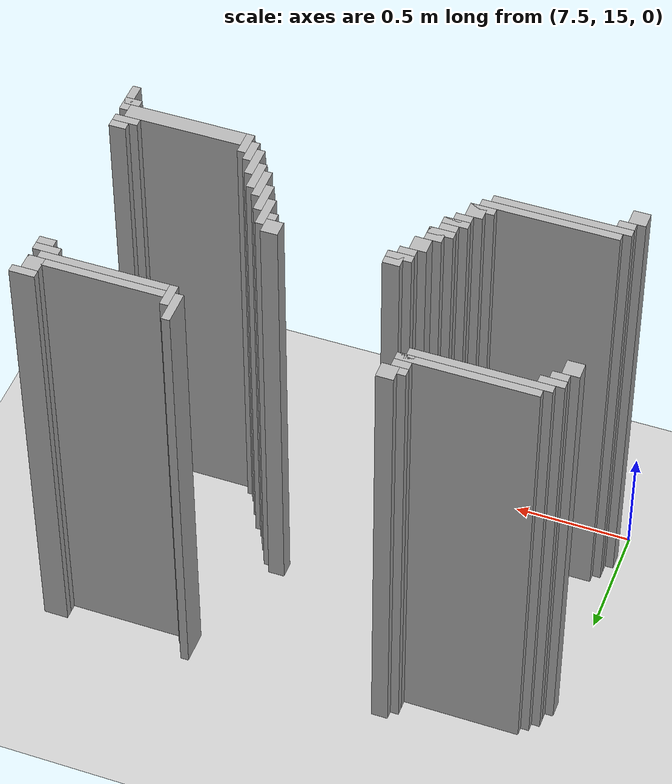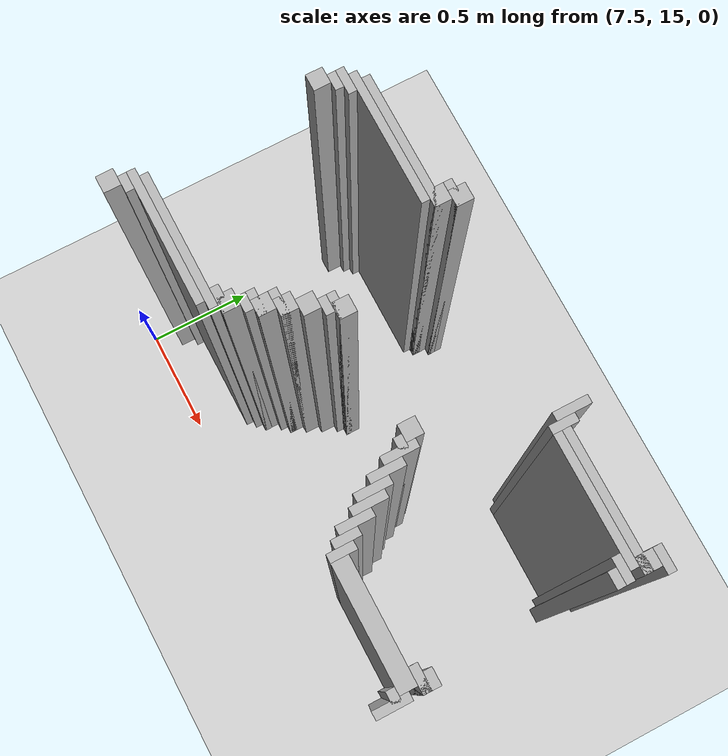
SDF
<sdf version="1.6">
 <world name="slam_world">
  <model name="ground_plane">
   <static>true</static>
   <link name="link">
    <collision name="collision">
     <geometry><plane><normal>0 0 1</normal><size>100 100</size></plane></geometry>
    </collision>
    <visual name="visual">
     <geometry><plane><normal>0 0 1</normal><size>100 100</size></plane></geometry>
     <material>
      <ambient>0.8 0.8 0.8 1</ambient>
      <diffuse>0.8 0.8 0.8 1</diffuse>
      <specular>0.8 0.8 0.8 1</specular>
     </material>
    </visual>
   </link>
  </model>
  <model name="wall_374">
   <static>true</static>
   <pose>8.178654292343387 16.218097447795824 1.0 0 0 0</pose>
   <link name="link">
    <collision name="collision">
     <geometry><box><size>0.06960556844547564 0.06960556844547564 2.0</size></box></geometry>
    </collision>
    <visual name="visual">
     <geometry><box><size>0.06960556844547564 0.06960556844547564 2.0</size></box></geometry>
     <material><ambient>0.5 0.5 0.5 1</ambient><diffuse>0.7 0.7 0.7 1</diffuse></material>
    </visual>
   </link>
  </model>
  <model name="wall_375">
   <static>true</static>
   <pose>9.031322505800464 16.183294663573086 1.0 0 0 0</pose>
   <link name="link">
    <collision name="collision">
     <geometry><box><size>0.03480278422273782 0.13921113689095127 2.0</size></box></geometry>
    </collision>
    <visual name="visual">
     <geometry><box><size>0.03480278422273782 0.13921113689095127 2.0</size></box></geometry>
     <material><ambient>0.5 0.5 0.5 1</ambient><diffuse>0.7 0.7 0.7 1</diffuse></material>
    </visual>
   </link>
  </model>
  <model name="wall_385">
   <static>true</static>
   <pose>8.161252900232018 16.200696055684453 1.0 0 0 0</pose>
   <link name="link">
    <collision name="collision">
     <geometry><box><size>0.10440835266821345 0.03480278422273782 2.0</size></box></geometry>
    </collision>
    <visual name="visual">
     <geometry><box><size>0.10440835266821345 0.03480278422273782 2.0</size></box></geometry>
     <material><ambient>0.5 0.5 0.5 1</ambient><diffuse>0.7 0.7 0.7 1</diffuse></material>
    </visual>
   </link>
  </model>
  <model name="wall_386">
   <static>true</static>
   <pose>9.622969837587007 16.200696055684453 1.0 0 0 0</pose>
   <link name="link">
    <collision name="collision">
     <geometry><box><size>0.10440835266821345 0.03480278422273782 2.0</size></box></geometry>
    </collision>
    <visual name="visual">
     <geometry><box><size>0.10440835266821345 0.03480278422273782 2.0</size></box></geometry>
     <material><ambient>0.5 0.5 0.5 1</ambient><diffuse>0.7 0.7 0.7 1</diffuse></material>
    </visual>
   </link>
  </model>
  <model name="wall_396">
   <static>true</static>
   <pose>8.14385150812065 16.14849187935035 1.0 0 0 0</pose>
   <link name="link">
    <collision name="collision">
     <geometry><box><size>0.06960556844547564 0.06960556844547564 2.0</size></box></geometry>
    </collision>
    <visual name="visual">
     <geometry><box><size>0.06960556844547564 0.06960556844547564 2.0</size></box></geometry>
     <material><ambient>0.5 0.5 0.5 1</ambient><diffuse>0.7 0.7 0.7 1</diffuse></material>
    </visual>
   </link>
  </model>
  <model name="wall_397">
   <static>true</static>
   <pose>9.066125290023201 16.13109048723898 1.0 0 0 0</pose>
   <link name="link">
    <collision name="collision">
     <geometry><box><size>0.03480278422273782 0.10440835266821345 2.0</size></box></geometry>
    </collision>
    <visual name="visual">
     <geometry><box><size>0.03480278422273782 0.10440835266821345 2.0</size></box></geometry>
     <material><ambient>0.5 0.5 0.5 1</ambient><diffuse>0.7 0.7 0.7 1</diffuse></material>
    </visual>
   </link>
  </model>
  <model name="wall_398">
   <static>true</static>
   <pose>9.605568445475638 16.14849187935035 1.0 0 0 0</pose>
   <link name="link">
    <collision name="collision">
     <geometry><box><size>0.06960556844547564 0.06960556844547564 2.0</size></box></geometry>
    </collision>
    <visual name="visual">
     <geometry><box><size>0.06960556844547564 0.06960556844547564 2.0</size></box></geometry>
     <material><ambient>0.5 0.5 0.5 1</ambient><diffuse>0.7 0.7 0.7 1</diffuse></material>
    </visual>
   </link>
  </model>
  <model name="wall_410">
   <static>true</static>
   <pose>7.900232018561485 16.13109048723898 1.0 0 0 0</pose>
   <link name="link">
    <collision name="collision">
     <geometry><box><size>0.5568445475638051 0.03480278422273782 2.0</size></box></geometry>
    </collision>
    <visual name="visual">
     <geometry><box><size>0.5568445475638051 0.03480278422273782 2.0</size></box></geometry>
     <material><ambient>0.5 0.5 0.5 1</ambient><diffuse>0.7 0.7 0.7 1</diffuse></material>
    </visual>
   </link>
  </model>
  <model name="wall_411">
   <static>true</static>
   <pose>9.361948955916473 16.13109048723898 1.0 0 0 0</pose>
   <link name="link">
    <collision name="collision">
     <geometry><box><size>0.5568445475638051 0.03480278422273782 2.0</size></box></geometry>
    </collision>
    <visual name="visual">
     <geometry><box><size>0.5568445475638051 0.03480278422273782 2.0</size></box></geometry>
     <material><ambient>0.5 0.5 0.5 1</ambient><diffuse>0.7 0.7 0.7 1</diffuse></material>
    </visual>
   </link>
  </model>
  <model name="wall_422">
   <static>true</static>
   <pose>7.865429234338746 16.09628770301624 1.0 0 0 0</pose>
   <link name="link">
    <collision name="collision">
     <geometry><box><size>0.5568445475638051 0.03480278422273782 2.0</size></box></geometry>
    </collision>
    <visual name="visual">
     <geometry><box><size>0.5568445475638051 0.03480278422273782 2.0</size></box></geometry>
     <material><ambient>0.5 0.5 0.5 1</ambient><diffuse>0.7 0.7 0.7 1</diffuse></material>
    </visual>
   </link>
  </model>
  <model name="wall_423">
   <static>true</static>
   <pose>9.344547563805104 16.09628770301624 1.0 0 0 0</pose>
   <link name="link">
    <collision name="collision">
     <geometry><box><size>0.5220417633410672 0.03480278422273782 2.0</size></box></geometry>
    </collision>
    <visual name="visual">
     <geometry><box><size>0.5220417633410672 0.03480278422273782 2.0</size></box></geometry>
     <material><ambient>0.5 0.5 0.5 1</ambient><diffuse>0.7 0.7 0.7 1</diffuse></material>
    </visual>
   </link>
  </model>
  <model name="wall_435">
   <static>true</static>
   <pose>7.604408352668213 16.061484918793504 1.0 0 0 0</pose>
   <link name="link">
    <collision name="collision">
     <geometry><box><size>0.10440835266821345 0.03480278422273782 2.0</size></box></geometry>
    </collision>
    <visual name="visual">
     <geometry><box><size>0.10440835266821345 0.03480278422273782 2.0</size></box></geometry>
     <material><ambient>0.5 0.5 0.5 1</ambient><diffuse>0.7 0.7 0.7 1</diffuse></material>
    </visual>
   </link>
  </model>
  <model name="wall_436">
   <static>true</static>
   <pose>9.588167053364268 16.061484918793504 1.0 0 0 0</pose>
   <link name="link">
    <collision name="collision">
     <geometry><box><size>0.10440835266821345 0.03480278422273782 2.0</size></box></geometry>
    </collision>
    <visual name="visual">
     <geometry><box><size>0.10440835266821345 0.03480278422273782 2.0</size></box></geometry>
     <material><ambient>0.5 0.5 0.5 1</ambient><diffuse>0.7 0.7 0.7 1</diffuse></material>
    </visual>
   </link>
  </model>
  <model name="wall_449">
   <static>true</static>
   <pose>7.587006960556844 16.026682134570766 1.0 0 0 0</pose>
   <link name="link">
    <collision name="collision">
     <geometry><box><size>0.06960556844547564 0.03480278422273782 2.0</size></box></geometry>
    </collision>
    <visual name="visual">
     <geometry><box><size>0.06960556844547564 0.03480278422273782 2.0</size></box></geometry>
     <material><ambient>0.5 0.5 0.5 1</ambient><diffuse>0.7 0.7 0.7 1</diffuse></material>
    </visual>
   </link>
  </model>
  <model name="wall_450">
   <static>true</static>
   <pose>9.605568445475638 16.026682134570766 1.0 0 0 0</pose>
   <link name="link">
    <collision name="collision">
     <geometry><box><size>0.06960556844547564 0.03480278422273782 2.0</size></box></geometry>
    </collision>
    <visual name="visual">
     <geometry><box><size>0.06960556844547564 0.03480278422273782 2.0</size></box></geometry>
     <material><ambient>0.5 0.5 0.5 1</ambient><diffuse>0.7 0.7 0.7 1</diffuse></material>
    </visual>
   </link>
  </model>
  <model name="wall_463">
   <static>true</static>
   <pose>7.552204176334106 15.974477958236658 1.0 0 0 0</pose>
   <link name="link">
    <collision name="collision">
     <geometry><box><size>0.06960556844547564 0.06960556844547564 2.0</size></box></geometry>
    </collision>
    <visual name="visual">
     <geometry><box><size>0.06960556844547564 0.06960556844547564 2.0</size></box></geometry>
     <material><ambient>0.5 0.5 0.5 1</ambient><diffuse>0.7 0.7 0.7 1</diffuse></material>
    </visual>
   </link>
  </model>
  <model name="wall_563">
   <static>true</static>
   <pose>8.352668213457076 15.661252900232018 1.0 0 0 0</pose>
   <link name="link">
    <collision name="collision">
     <geometry><box><size>0.06960556844547564 0.06960556844547564 2.0</size></box></geometry>
    </collision>
    <visual name="visual">
     <geometry><box><size>0.06960556844547564 0.06960556844547564 2.0</size></box></geometry>
     <material><ambient>0.5 0.5 0.5 1</ambient><diffuse>0.7 0.7 0.7 1</diffuse></material>
    </visual>
   </link>
  </model>
  <model name="wall_564">
   <static>true</static>
   <pose>8.839907192575406 15.661252900232018 1.0 0 0 0</pose>
   <link name="link">
    <collision name="collision">
     <geometry><box><size>0.06960556844547564 0.06960556844547564 2.0</size></box></geometry>
    </collision>
    <visual name="visual">
     <geometry><box><size>0.06960556844547564 0.06960556844547564 2.0</size></box></geometry>
     <material><ambient>0.5 0.5 0.5 1</ambient><diffuse>0.7 0.7 0.7 1</diffuse></material>
    </visual>
   </link>
  </model>
  <model name="wall_579">
   <static>true</static>
   <pose>8.335266821345707 15.64385150812065 1.0 0 0 0</pose>
   <link name="link">
    <collision name="collision">
     <geometry><box><size>0.10440835266821345 0.03480278422273782 2.0</size></box></geometry>
    </collision>
    <visual name="visual">
     <geometry><box><size>0.10440835266821345 0.03480278422273782 2.0</size></box></geometry>
     <material><ambient>0.5 0.5 0.5 1</ambient><diffuse>0.7 0.7 0.7 1</diffuse></material>
    </visual>
   </link>
  </model>
  <model name="wall_580">
   <static>true</static>
   <pose>8.892111368909513 15.591647331786543 1.0 0 0 0</pose>
   <link name="link">
    <collision name="collision">
     <geometry><box><size>0.03480278422273782 0.13921113689095127 2.0</size></box></geometry>
    </collision>
    <visual name="visual">
     <geometry><box><size>0.03480278422273782 0.13921113689095127 2.0</size></box></geometry>
     <material><ambient>0.5 0.5 0.5 1</ambient><diffuse>0.7 0.7 0.7 1</diffuse></material>
    </visual>
   </link>
  </model>
  <model name="wall_598">
   <static>true</static>
   <pose>8.317865429234338 15.609048723897912 1.0 0 0 0</pose>
   <link name="link">
    <collision name="collision">
     <geometry><box><size>0.06960556844547564 0.03480278422273782 2.0</size></box></geometry>
    </collision>
    <visual name="visual">
     <geometry><box><size>0.06960556844547564 0.03480278422273782 2.0</size></box></geometry>
     <material><ambient>0.5 0.5 0.5 1</ambient><diffuse>0.7 0.7 0.7 1</diffuse></material>
    </visual>
   </link>
  </model>
  <model name="wall_599">
   <static>true</static>
   <pose>8.874709976798144 15.609048723897912 1.0 0 0 0</pose>
   <link name="link">
    <collision name="collision">
     <geometry><box><size>0.06960556844547564 0.03480278422273782 2.0</size></box></geometry>
    </collision>
    <visual name="visual">
     <geometry><box><size>0.06960556844547564 0.03480278422273782 2.0</size></box></geometry>
     <material><ambient>0.5 0.5 0.5 1</ambient><diffuse>0.7 0.7 0.7 1</diffuse></material>
    </visual>
   </link>
  </model>
  <model name="wall_615">
   <static>true</static>
   <pose>8.2830626450116 15.556844547563804 1.0 0 0 0</pose>
   <link name="link">
    <collision name="collision">
     <geometry><box><size>0.06960556844547564 0.06960556844547564 2.0</size></box></geometry>
    </collision>
    <visual name="visual">
     <geometry><box><size>0.06960556844547564 0.06960556844547564 2.0</size></box></geometry>
     <material><ambient>0.5 0.5 0.5 1</ambient><diffuse>0.7 0.7 0.7 1</diffuse></material>
    </visual>
   </link>
  </model>
  <model name="wall_616">
   <static>true</static>
   <pose>8.92691415313225 15.522041763341067 1.0 0 0 0</pose>
   <link name="link">
    <collision name="collision">
     <geometry><box><size>0.03480278422273782 0.13921113689095127 2.0</size></box></geometry>
    </collision>
    <visual name="visual">
     <geometry><box><size>0.03480278422273782 0.13921113689095127 2.0</size></box></geometry>
     <material><ambient>0.5 0.5 0.5 1</ambient><diffuse>0.7 0.7 0.7 1</diffuse></material>
    </visual>
   </link>
  </model>
  <model name="wall_632">
   <static>true</static>
   <pose>8.248259860788863 15.48723897911833 1.0 0 0 0</pose>
   <link name="link">
    <collision name="collision">
     <geometry><box><size>0.06960556844547564 0.06960556844547564 2.0</size></box></geometry>
    </collision>
    <visual name="visual">
     <geometry><box><size>0.06960556844547564 0.06960556844547564 2.0</size></box></geometry>
     <material><ambient>0.5 0.5 0.5 1</ambient><diffuse>0.7 0.7 0.7 1</diffuse></material>
    </visual>
   </link>
  </model>
  <model name="wall_633">
   <static>true</static>
   <pose>8.961716937354987 15.452436194895592 1.0 0 0 0</pose>
   <link name="link">
    <collision name="collision">
     <geometry><box><size>0.03480278422273782 0.13921113689095127 2.0</size></box></geometry>
    </collision>
    <visual name="visual">
     <geometry><box><size>0.03480278422273782 0.13921113689095127 2.0</size></box></geometry>
     <material><ambient>0.5 0.5 0.5 1</ambient><diffuse>0.7 0.7 0.7 1</diffuse></material>
    </visual>
   </link>
  </model>
  <model name="wall_649">
   <static>true</static>
   <pose>8.230858468677495 15.46983758700696 1.0 0 0 0</pose>
   <link name="link">
    <collision name="collision">
     <geometry><box><size>0.10440835266821345 0.03480278422273782 2.0</size></box></geometry>
    </collision>
    <visual name="visual">
     <geometry><box><size>0.10440835266821345 0.03480278422273782 2.0</size></box></geometry>
     <material><ambient>0.5 0.5 0.5 1</ambient><diffuse>0.7 0.7 0.7 1</diffuse></material>
    </visual>
   </link>
  </model>
  <model name="wall_650">
   <static>true</static>
   <pose>8.996519721577727 15.417633410672853 1.0 0 0 0</pose>
   <link name="link">
    <collision name="collision">
     <geometry><box><size>0.03480278422273782 0.13921113689095127 2.0</size></box></geometry>
    </collision>
    <visual name="visual">
     <geometry><box><size>0.03480278422273782 0.13921113689095127 2.0</size></box></geometry>
     <material><ambient>0.5 0.5 0.5 1</ambient><diffuse>0.7 0.7 0.7 1</diffuse></material>
    </visual>
   </link>
  </model>
  <model name="wall_663">
   <static>true</static>
   <pose>8.213457076566124 15.417633410672853 1.0 0 0 0</pose>
   <link name="link">
    <collision name="collision">
     <geometry><box><size>0.06960556844547564 0.06960556844547564 2.0</size></box></geometry>
    </collision>
    <visual name="visual">
     <geometry><box><size>0.06960556844547564 0.06960556844547564 2.0</size></box></geometry>
     <material><ambient>0.5 0.5 0.5 1</ambient><diffuse>0.7 0.7 0.7 1</diffuse></material>
    </visual>
   </link>
  </model>
  <model name="wall_678">
   <static>true</static>
   <pose>8.196055684454755 15.400232018561484 1.0 0 0 0</pose>
   <link name="link">
    <collision name="collision">
     <geometry><box><size>0.10440835266821345 0.03480278422273782 2.0</size></box></geometry>
    </collision>
    <visual name="visual">
     <geometry><box><size>0.10440835266821345 0.03480278422273782 2.0</size></box></geometry>
     <material><ambient>0.5 0.5 0.5 1</ambient><diffuse>0.7 0.7 0.7 1</diffuse></material>
    </visual>
   </link>
  </model>
  <model name="wall_679">
   <static>true</static>
   <pose>9.031322505800464 15.348027842227378 1.0 0 0 0</pose>
   <link name="link">
    <collision name="collision">
     <geometry><box><size>0.03480278422273782 0.13921113689095127 2.0</size></box></geometry>
    </collision>
    <visual name="visual">
     <geometry><box><size>0.03480278422273782 0.13921113689095127 2.0</size></box></geometry>
     <material><ambient>0.5 0.5 0.5 1</ambient><diffuse>0.7 0.7 0.7 1</diffuse></material>
    </visual>
   </link>
  </model>
  <model name="wall_690">
   <static>true</static>
   <pose>8.178654292343387 15.365429234338746 1.0 0 0 0</pose>
   <link name="link">
    <collision name="collision">
     <geometry><box><size>0.06960556844547564 0.03480278422273782 2.0</size></box></geometry>
    </collision>
    <visual name="visual">
     <geometry><box><size>0.06960556844547564 0.03480278422273782 2.0</size></box></geometry>
     <material><ambient>0.5 0.5 0.5 1</ambient><diffuse>0.7 0.7 0.7 1</diffuse></material>
    </visual>
   </link>
  </model>
  <model name="wall_703">
   <static>true</static>
   <pose>8.14385150812065 15.31322505800464 1.0 0 0 0</pose>
   <link name="link">
    <collision name="collision">
     <geometry><box><size>0.06960556844547564 0.06960556844547564 2.0</size></box></geometry>
    </collision>
    <visual name="visual">
     <geometry><box><size>0.06960556844547564 0.06960556844547564 2.0</size></box></geometry>
     <material><ambient>0.5 0.5 0.5 1</ambient><diffuse>0.7 0.7 0.7 1</diffuse></material>
    </visual>
   </link>
  </model>
  <model name="wall_704">
   <static>true</static>
   <pose>9.066125290023201 15.295823665893272 1.0 0 0 0</pose>
   <link name="link">
    <collision name="collision">
     <geometry><box><size>0.03480278422273782 0.10440835266821345 2.0</size></box></geometry>
    </collision>
    <visual name="visual">
     <geometry><box><size>0.03480278422273782 0.10440835266821345 2.0</size></box></geometry>
     <material><ambient>0.5 0.5 0.5 1</ambient><diffuse>0.7 0.7 0.7 1</diffuse></material>
    </visual>
   </link>
  </model>
  <model name="wall_705">
   <static>true</static>
   <pose>9.605568445475638 15.31322505800464 1.0 0 0 0</pose>
   <link name="link">
    <collision name="collision">
     <geometry><box><size>0.06960556844547564 0.06960556844547564 2.0</size></box></geometry>
    </collision>
    <visual name="visual">
     <geometry><box><size>0.06960556844547564 0.06960556844547564 2.0</size></box></geometry>
     <material><ambient>0.5 0.5 0.5 1</ambient><diffuse>0.7 0.7 0.7 1</diffuse></material>
    </visual>
   </link>
  </model>
  <model name="wall_720">
   <static>true</static>
   <pose>8.12645011600928 15.295823665893272 1.0 0 0 0</pose>
   <link name="link">
    <collision name="collision">
     <geometry><box><size>0.10440835266821345 0.03480278422273782 2.0</size></box></geometry>
    </collision>
    <visual name="visual">
     <geometry><box><size>0.10440835266821345 0.03480278422273782 2.0</size></box></geometry>
     <material><ambient>0.5 0.5 0.5 1</ambient><diffuse>0.7 0.7 0.7 1</diffuse></material>
    </visual>
   </link>
  </model>
  <model name="wall_721">
   <static>true</static>
   <pose>9.100928074245939 15.261020881670532 1.0 0 0 0</pose>
   <link name="link">
    <collision name="collision">
     <geometry><box><size>0.03480278422273782 0.10440835266821345 2.0</size></box></geometry>
    </collision>
    <visual name="visual">
     <geometry><box><size>0.03480278422273782 0.10440835266821345 2.0</size></box></geometry>
     <material><ambient>0.5 0.5 0.5 1</ambient><diffuse>0.7 0.7 0.7 1</diffuse></material>
    </visual>
   </link>
  </model>
  <model name="wall_722">
   <static>true</static>
   <pose>9.588167053364268 15.295823665893272 1.0 0 0 0</pose>
   <link name="link">
    <collision name="collision">
     <geometry><box><size>0.10440835266821345 0.03480278422273782 2.0</size></box></geometry>
    </collision>
    <visual name="visual">
     <geometry><box><size>0.10440835266821345 0.03480278422273782 2.0</size></box></geometry>
     <material><ambient>0.5 0.5 0.5 1</ambient><diffuse>0.7 0.7 0.7 1</diffuse></material>
    </visual>
   </link>
  </model>
  <model name="wall_733">
   <static>true</static>
   <pose>7.865429234338746 15.261020881670532 1.0 0 0 0</pose>
   <link name="link">
    <collision name="collision">
     <geometry><box><size>0.5568445475638051 0.03480278422273782 2.0</size></box></geometry>
    </collision>
    <visual name="visual">
     <geometry><box><size>0.5568445475638051 0.03480278422273782 2.0</size></box></geometry>
     <material><ambient>0.5 0.5 0.5 1</ambient><diffuse>0.7 0.7 0.7 1</diffuse></material>
    </visual>
   </link>
  </model>
  <model name="wall_734">
   <static>true</static>
   <pose>9.361948955916473 15.243619489559164 1.0 0 0 0</pose>
   <link name="link">
    <collision name="collision">
     <geometry><box><size>0.4872389791183295 0.06960556844547564 2.0</size></box></geometry>
    </collision>
    <visual name="visual">
     <geometry><box><size>0.4872389791183295 0.06960556844547564 2.0</size></box></geometry>
     <material><ambient>0.5 0.5 0.5 1</ambient><diffuse>0.7 0.7 0.7 1</diffuse></material>
    </visual>
   </link>
  </model>
  <model name="wall_743">
   <static>true</static>
   <pose>7.830626450116009 15.226218097447795 1.0 0 0 0</pose>
   <link name="link">
    <collision name="collision">
     <geometry><box><size>0.5568445475638051 0.03480278422273782 2.0</size></box></geometry>
    </collision>
    <visual name="visual">
     <geometry><box><size>0.5568445475638051 0.03480278422273782 2.0</size></box></geometry>
     <material><ambient>0.5 0.5 0.5 1</ambient><diffuse>0.7 0.7 0.7 1</diffuse></material>
    </visual>
   </link>
  </model>
  <model name="wall_744">
   <static>true</static>
   <pose>9.622969837587007 15.174013921113689 1.0 0 0 0</pose>
   <link name="link">
    <collision name="collision">
     <geometry><box><size>0.03480278422273782 0.13921113689095127 2.0</size></box></geometry>
    </collision>
    <visual name="visual">
     <geometry><box><size>0.03480278422273782 0.13921113689095127 2.0</size></box></geometry>
     <material><ambient>0.5 0.5 0.5 1</ambient><diffuse>0.7 0.7 0.7 1</diffuse></material>
    </visual>
   </link>
  </model>
  <model name="wall_755">
   <static>true</static>
   <pose>7.587006960556844 15.191415313225058 1.0 0 0 0</pose>
   <link name="link">
    <collision name="collision">
     <geometry><box><size>0.06960556844547564 0.03480278422273782 2.0</size></box></geometry>
    </collision>
    <visual name="visual">
     <geometry><box><size>0.06960556844547564 0.03480278422273782 2.0</size></box></geometry>
     <material><ambient>0.5 0.5 0.5 1</ambient><diffuse>0.7 0.7 0.7 1</diffuse></material>
    </visual>
   </link>
  </model>
  <model name="wall_756">
   <static>true</static>
   <pose>9.605568445475638 15.191415313225058 1.0 0 0 0</pose>
   <link name="link">
    <collision name="collision">
     <geometry><box><size>0.06960556844547564 0.03480278422273782 2.0</size></box></geometry>
    </collision>
    <visual name="visual">
     <geometry><box><size>0.06960556844547564 0.03480278422273782 2.0</size></box></geometry>
     <material><ambient>0.5 0.5 0.5 1</ambient><diffuse>0.7 0.7 0.7 1</diffuse></material>
    </visual>
   </link>
  </model>
  <model name="wall_767">
   <static>true</static>
   <pose>7.552204176334106 15.139211136890951 1.0 0 0 0</pose>
   <link name="link">
    <collision name="collision">
     <geometry><box><size>0.06960556844547564 0.06960556844547564 2.0</size></box></geometry>
    </collision>
    <visual name="visual">
     <geometry><box><size>0.06960556844547564 0.06960556844547564 2.0</size></box></geometry>
     <material><ambient>0.5 0.5 0.5 1</ambient><diffuse>0.7 0.7 0.7 1</diffuse></material>
    </visual>
   </link>
  </model>
 </world>
</sdf>
